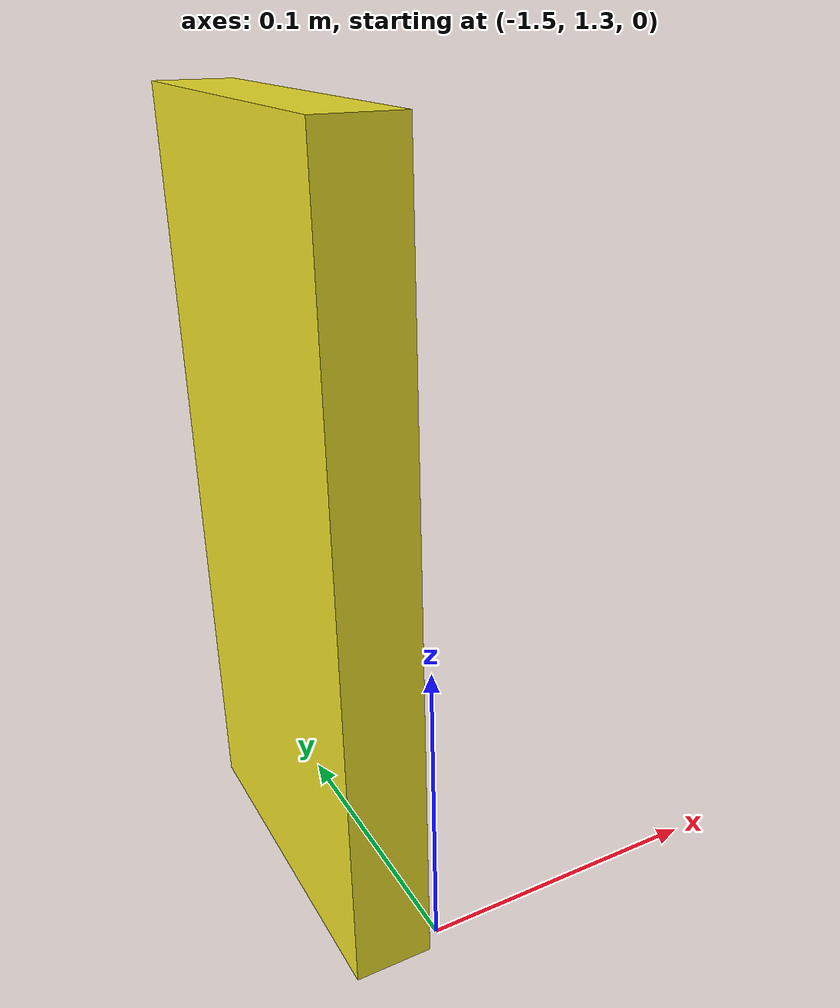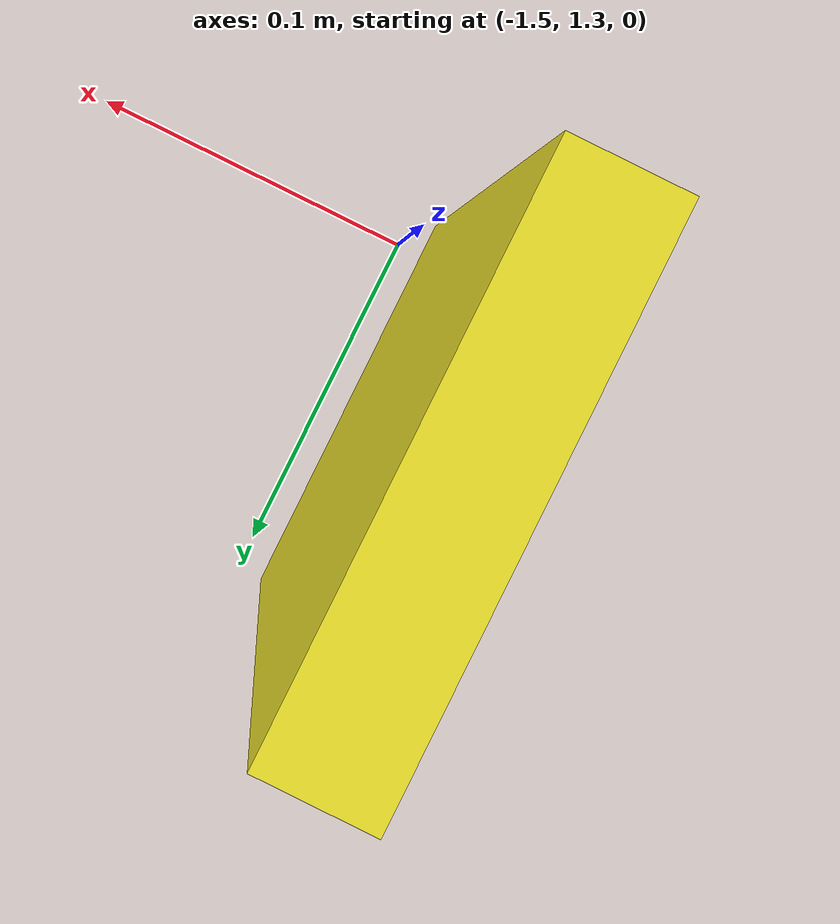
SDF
<?xml version='1.0'?>
<sdf version='1.6'>
  <model name='traffic_light_yellow'>
    <pose frame=''>0 0 0 0 -0 0</pose>
    <link name='traffic_light_yellow'>
       <collision name='collision'>
          <pose frame=''>-1.52 1.35 0.13 0 0 1.5708</pose>
          <geometry>
            <box>
              <size>0.12 0.025 0.25</size>
            </box>
          </geometry>
        </collision>
        <visual name='visual'>
          <pose frame=''>-1.52 1.35 0.13 0 0 1.5708</pose>
          <geometry>
            <box>
              <size>0.12 0.025 0.25</size>
            </box>
          </geometry>
          <material>
            <script>
              <uri>model://turtlebot3_autorace_2020/traffic_light_yellow/materials/scripts</uri>
              <uri>model://turtlebot3_autorace_2020/traffic_light_yellow/materials/textures</uri>
              <name>traffic_light_yellow</name>
            </script>
          </material>
        </visual>
      </link>
      <static>1</static>
    </model>
</sdf>
